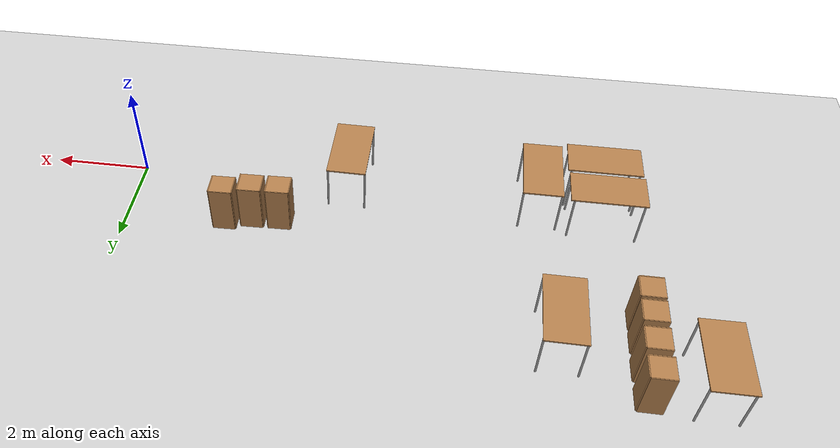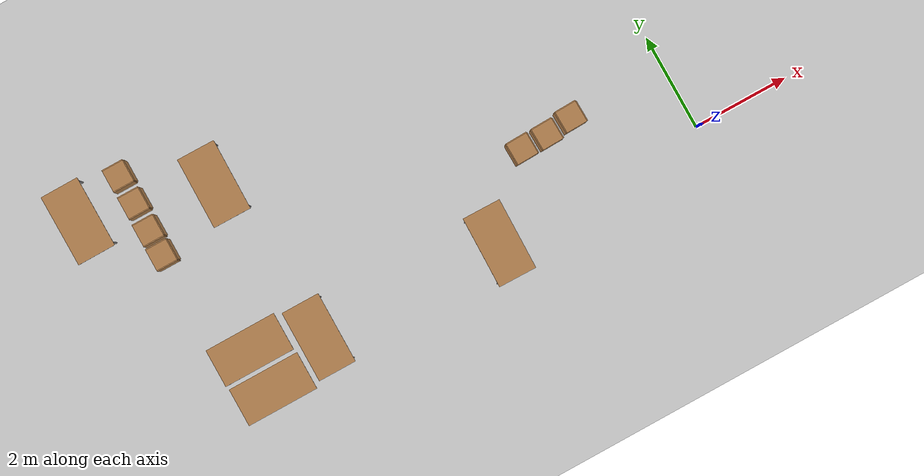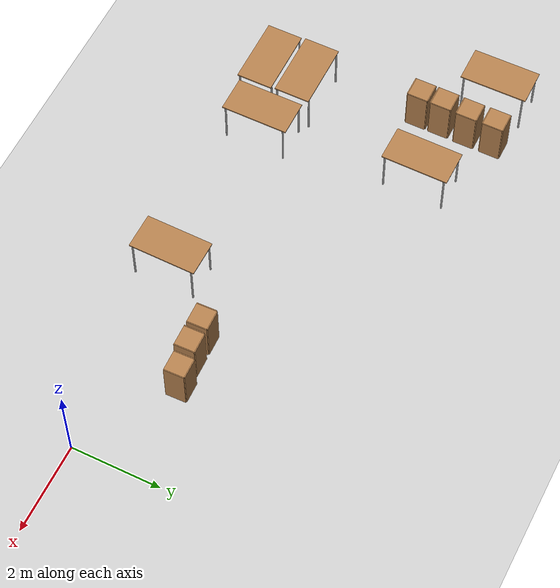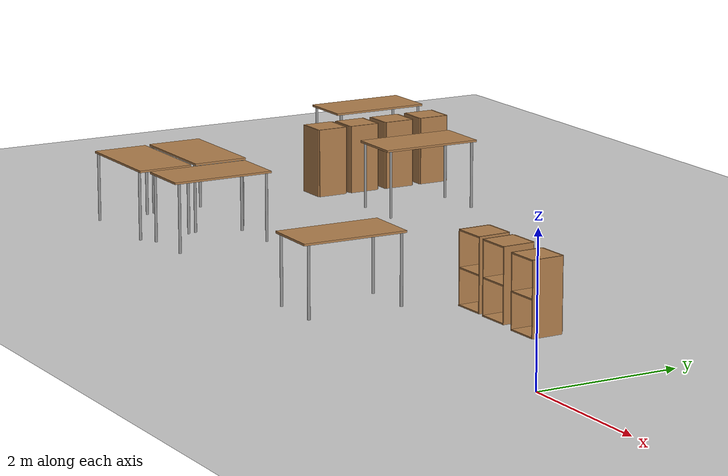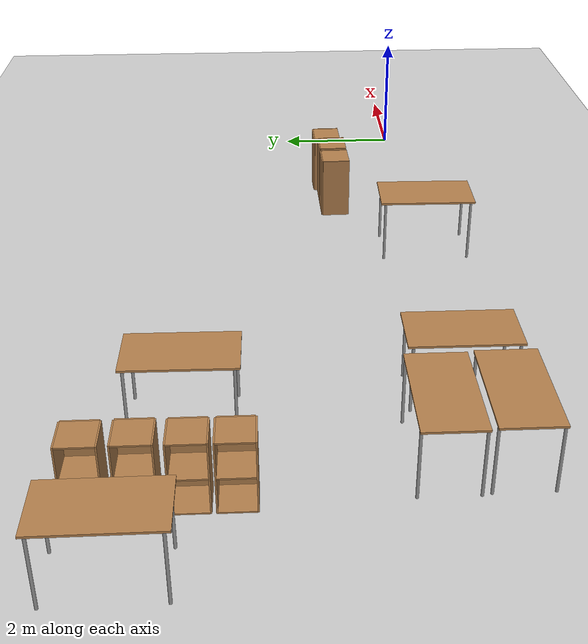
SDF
<sdf version="1.6">
 <world name="default">
  <model name="ground_plane">
   <static>1</static>
   <link name="link">
    <collision name="collision">
     <geometry><plane><normal>0 0 1</normal><size>100 100</size></plane></geometry>
     <surface>
      <contact><collide_bitmask>65535</collide_bitmask></contact>
      <friction><ode><mu>100</mu><mu2>50</mu2></ode></friction>
     </surface>
    </collision>
    <visual name="visual">
     <cast_shadows>0</cast_shadows>
     <geometry><plane><normal>0 0 1</normal><size>100 100</size></plane></geometry>
     <material>
      <script><uri>file://media/materials/scripts/gazebo.material</uri><name>Gazebo/Grey</name></script>
     </material>
    </visual>
   </link>
  </model>
  <model name="table">
   <static>1</static>
   <link name="link">
    <collision name="surface">
     <pose>0 0 1 0 -0 0</pose>
     <geometry><box><size>1.5 0.8 0.03</size></box></geometry>
     <surface><friction><ode><mu>0.6</mu><mu2>0.6</mu2></ode></friction></surface>
    </collision>
    <visual name="visual1">
     <pose>0 0 1 0 -0 0</pose>
     <geometry><box><size>1.5 0.8 0.03</size></box></geometry>
     <material>
      <script><uri>file://media/materials/scripts/gazebo.material</uri><name>Gazebo/Wood</name></script>
     </material>
    </visual>
    <collision name="front_left_leg">
     <pose>0.68 0.38 0.5 0 -0 0</pose>
     <geometry><cylinder><radius>0.02</radius><length>1</length></cylinder></geometry>
    </collision>
    <visual name="front_left_leg">
     <pose>0.68 0.38 0.5 0 -0 0</pose>
     <geometry><cylinder><radius>0.02</radius><length>1</length></cylinder></geometry>
     <material>
      <script><uri>file://media/materials/scripts/gazebo.material</uri><name>Gazebo/Grey</name></script>
     </material>
    </visual>
    <collision name="front_right_leg">
     <pose>0.68 -0.38 0.5 0 -0 0</pose>
     <geometry><cylinder><radius>0.02</radius><length>1</length></cylinder></geometry>
    </collision>
    <visual name="front_right_leg">
     <pose>0.68 -0.38 0.5 0 -0 0</pose>
     <geometry><cylinder><radius>0.02</radius><length>1</length></cylinder></geometry>
     <material>
      <script><uri>file://media/materials/scripts/gazebo.material</uri><name>Gazebo/Grey</name></script>
     </material>
    </visual>
    <collision name="back_right_leg">
     <pose>-0.68 -0.38 0.5 0 -0 0</pose>
     <geometry><cylinder><radius>0.02</radius><length>1</length></cylinder></geometry>
    </collision>
    <visual name="back_right_leg">
     <pose>-0.68 -0.38 0.5 0 -0 0</pose>
     <geometry><cylinder><radius>0.02</radius><length>1</length></cylinder></geometry>
     <material>
      <script><uri>file://media/materials/scripts/gazebo.material</uri><name>Gazebo/Grey</name></script>
     </material>
    </visual>
    <collision name="back_left_leg">
     <pose>-0.68 0.38 0.5 0 -0 0</pose>
     <geometry><cylinder><radius>0.02</radius><length>1</length></cylinder></geometry>
    </collision>
    <visual name="back_left_leg">
     <pose>-0.68 0.38 0.5 0 -0 0</pose>
     <geometry><cylinder><radius>0.02</radius><length>1</length></cylinder></geometry>
     <material>
      <script><uri>file://media/materials/scripts/gazebo.material</uri><name>Gazebo/Grey</name></script>
     </material>
    </visual>
   </link>
   <pose>-11.4413 4.20939 0 0 0 -1.56565</pose>
  </model>
  <model name="cabinet">
   <static>1</static>
   <link name="cabinet_bottom_plate">
    <inertial>
     <pose>0 0 -1 0 -0 0</pose>
     <inertia><ixx>2.05</ixx><ixy>0</ixy><ixz>0</ixz><iyy>2.05</iyy><iyz>0</iyz><izz>2.05</izz></inertia>
     <mass>25</mass>
    </inertial>
    <collision name="cabinet_bottom_plate_geom">
     <pose>0 0 0.01 0 -0 0</pose>
     <geometry><box><size>0.45 0.45 0.02</size></box></geometry>
    </collision>
    <visual name="cabinet_bottom_plate_geom_visual">
     <pose>0 0 0.01 0 -0 0</pose>
     <geometry><box><size>0.45 0.45 0.02</size></box></geometry>
     <material>
      <script><uri>file://media/materials/scripts/gazebo.material</uri><name>Gazebo/Wood</name></script>
     </material>
    </visual>
    <collision name="cabinet_bottom_plate_geom_cabinet_back_plate">
     <pose>0.235 0 0.51 0 -0 0</pose>
     <geometry><box><size>0.02 0.45 1.02</size></box></geometry>
    </collision>
    <visual name="cabinet_bottom_plate_geom_cabinet_back_plate_visual">
     <pose>0.235 0 0.51 0 -0 0</pose>
     <geometry><box><size>0.02 0.45 1.02</size></box></geometry>
     <material>
      <script><uri>file://media/materials/scripts/gazebo.material</uri><name>Gazebo/Wood</name></script>
     </material>
    </visual>
    <collision name="cabinet_bottom_plate_geom_cabinet_left_plate">
     <pose>0 0.235 0.51 0 -0 0</pose>
     <geometry><box><size>0.45 0.02 1.02</size></box></geometry>
    </collision>
    <visual name="cabinet_bottom_plate_geom_cabinet_left_plate_visual">
     <pose>0 0.235 0.51 0 -0 0</pose>
     <geometry><box><size>0.45 0.02 1.02</size></box></geometry>
     <material>
      <script><uri>file://media/materials/scripts/gazebo.material</uri><name>Gazebo/Wood</name></script>
     </material>
    </visual>
    <collision name="cabinet_bottom_plate_geom_cabinet_middle_plate">
     <pose>0 0 0.51 0 -0 0</pose>
     <geometry><box><size>0.45 0.45 0.02</size></box></geometry>
    </collision>
    <visual name="cabinet_bottom_plate_geom_cabinet_middle_plate_visual">
     <pose>0 0 0.51 0 -0 0</pose>
     <geometry><box><size>0.45 0.45 0.02</size></box></geometry>
     <material>
      <script><uri>file://media/materials/scripts/gazebo.material</uri><name>Gazebo/Wood</name></script>
     </material>
    </visual>
    <collision name="cabinet_bottom_plate_geom_cabinet_right_plate">
     <pose>0 -0.235 0.51 0 -0 0</pose>
     <geometry><box><size>0.45 0.02 1.02</size></box></geometry>
    </collision>
    <visual name="cabinet_bottom_plate_geom_cabinet_right_plate_visual">
     <pose>0 -0.235 0.51 0 -0 0</pose>
     <geometry><box><size>0.45 0.02 1.02</size></box></geometry>
     <material>
      <script><uri>file://media/materials/scripts/gazebo.material</uri><name>Gazebo/Wood</name></script>
     </material>
    </visual>
    <collision name="cabinet_bottom_plate_geom_cabinet_top_plate">
     <pose>0 0 1.01 0 -0 0</pose>
     <geometry><box><size>0.45 0.45 0.02</size></box></geometry>
    </collision>
    <visual name="cabinet_bottom_plate_geom_cabinet_top_plate_visual">
     <pose>0 0 1.01 0 -0 0</pose>
     <geometry><box><size>0.45 0.45 0.02</size></box></geometry>
     <material>
      <script><uri>file://media/materials/scripts/gazebo.material</uri><name>Gazebo/Wood</name></script>
     </material>
    </visual>
   </link>
   <pose>-10.3428 2.85716 0 0 -0 0</pose>
  </model>
  <model name="cabinet_0">
   <static>1</static>
   <link name="cabinet_bottom_plate">
    <inertial>
     <pose>0 0 -1 0 -0 0</pose>
     <inertia><ixx>2.05</ixx><ixy>0</ixy><ixz>0</ixz><iyy>2.05</iyy><iyz>0</iyz><izz>2.05</izz></inertia>
     <mass>25</mass>
    </inertial>
    <collision name="cabinet_bottom_plate_geom">
     <pose>0 0 0.01 0 -0 0</pose>
     <geometry><box><size>0.45 0.45 0.02</size></box></geometry>
    </collision>
    <visual name="cabinet_bottom_plate_geom_visual">
     <pose>0 0 0.01 0 -0 0</pose>
     <geometry><box><size>0.45 0.45 0.02</size></box></geometry>
     <material>
      <script><uri>file://media/materials/scripts/gazebo.material</uri><name>Gazebo/Wood</name></script>
     </material>
    </visual>
    <collision name="cabinet_bottom_plate_geom_cabinet_back_plate">
     <pose>0.235 0 0.51 0 -0 0</pose>
     <geometry><box><size>0.02 0.45 1.02</size></box></geometry>
    </collision>
    <visual name="cabinet_bottom_plate_geom_cabinet_back_plate_visual">
     <pose>0.235 0 0.51 0 -0 0</pose>
     <geometry><box><size>0.02 0.45 1.02</size></box></geometry>
     <material>
      <script><uri>file://media/materials/scripts/gazebo.material</uri><name>Gazebo/Wood</name></script>
     </material>
    </visual>
    <collision name="cabinet_bottom_plate_geom_cabinet_left_plate">
     <pose>0 0.235 0.51 0 -0 0</pose>
     <geometry><box><size>0.45 0.02 1.02</size></box></geometry>
    </collision>
    <visual name="cabinet_bottom_plate_geom_cabinet_left_plate_visual">
     <pose>0 0.235 0.51 0 -0 0</pose>
     <geometry><box><size>0.45 0.02 1.02</size></box></geometry>
     <material>
      <script><uri>file://media/materials/scripts/gazebo.material</uri><name>Gazebo/Wood</name></script>
     </material>
    </visual>
    <collision name="cabinet_bottom_plate_geom_cabinet_middle_plate">
     <pose>0 0 0.51 0 -0 0</pose>
     <geometry><box><size>0.45 0.45 0.02</size></box></geometry>
    </collision>
    <visual name="cabinet_bottom_plate_geom_cabinet_middle_plate_visual">
     <pose>0 0 0.51 0 -0 0</pose>
     <geometry><box><size>0.45 0.45 0.02</size></box></geometry>
     <material>
      <script><uri>file://media/materials/scripts/gazebo.material</uri><name>Gazebo/Wood</name></script>
     </material>
    </visual>
    <collision name="cabinet_bottom_plate_geom_cabinet_right_plate">
     <pose>0 -0.235 0.51 0 -0 0</pose>
     <geometry><box><size>0.45 0.02 1.02</size></box></geometry>
    </collision>
    <visual name="cabinet_bottom_plate_geom_cabinet_right_plate_visual">
     <pose>0 -0.235 0.51 0 -0 0</pose>
     <geometry><box><size>0.45 0.02 1.02</size></box></geometry>
     <material>
      <script><uri>file://media/materials/scripts/gazebo.material</uri><name>Gazebo/Wood</name></script>
     </material>
    </visual>
    <collision name="cabinet_bottom_plate_geom_cabinet_top_plate">
     <pose>0 0 1.01 0 -0 0</pose>
     <geometry><box><size>0.45 0.45 0.02</size></box></geometry>
    </collision>
    <visual name="cabinet_bottom_plate_geom_cabinet_top_plate_visual">
     <pose>0 0 1.01 0 -0 0</pose>
     <geometry><box><size>0.45 0.45 0.02</size></box></geometry>
     <material>
      <script><uri>file://media/materials/scripts/gazebo.material</uri><name>Gazebo/Wood</name></script>
     </material>
    </visual>
   </link>
   <pose>-10.3414 3.39549 0 0 -0 0</pose>
  </model>
  <model name="cabinet_clone">
   <static>1</static>
   <link name="cabinet_bottom_plate">
    <inertial>
     <pose>0 0 -1 0 -0 0</pose>
     <inertia><ixx>2.05</ixx><ixy>0</ixy><ixz>0</ixz><iyy>2.05</iyy><iyz>0</iyz><izz>2.05</izz></inertia>
     <mass>25</mass>
    </inertial>
    <collision name="cabinet_bottom_plate_geom">
     <pose>0 0 0.01 0 -0 0</pose>
     <geometry><box><size>0.45 0.45 0.02</size></box></geometry>
    </collision>
    <visual name="cabinet_bottom_plate_geom_visual">
     <pose>0 0 0.01 0 -0 0</pose>
     <geometry><box><size>0.45 0.45 0.02</size></box></geometry>
     <material>
      <script><uri>file://media/materials/scripts/gazebo.material</uri><name>Gazebo/Wood</name></script>
     </material>
    </visual>
    <collision name="cabinet_bottom_plate_geom_cabinet_back_plate">
     <pose>0.235 0 0.51 0 -0 0</pose>
     <geometry><box><size>0.02 0.45 1.02</size></box></geometry>
    </collision>
    <visual name="cabinet_bottom_plate_geom_cabinet_back_plate_visual">
     <pose>0.235 0 0.51 0 -0 0</pose>
     <geometry><box><size>0.02 0.45 1.02</size></box></geometry>
     <material>
      <script><uri>file://media/materials/scripts/gazebo.material</uri><name>Gazebo/Wood</name></script>
     </material>
    </visual>
    <collision name="cabinet_bottom_plate_geom_cabinet_left_plate">
     <pose>0 0.235 0.51 0 -0 0</pose>
     <geometry><box><size>0.45 0.02 1.02</size></box></geometry>
    </collision>
    <visual name="cabinet_bottom_plate_geom_cabinet_left_plate_visual">
     <pose>0 0.235 0.51 0 -0 0</pose>
     <geometry><box><size>0.45 0.02 1.02</size></box></geometry>
     <material>
      <script><uri>file://media/materials/scripts/gazebo.material</uri><name>Gazebo/Wood</name></script>
     </material>
    </visual>
    <collision name="cabinet_bottom_plate_geom_cabinet_middle_plate">
     <pose>0 0 0.51 0 -0 0</pose>
     <geometry><box><size>0.45 0.45 0.02</size></box></geometry>
    </collision>
    <visual name="cabinet_bottom_plate_geom_cabinet_middle_plate_visual">
     <pose>0 0 0.51 0 -0 0</pose>
     <geometry><box><size>0.45 0.45 0.02</size></box></geometry>
     <material>
      <script><uri>file://media/materials/scripts/gazebo.material</uri><name>Gazebo/Wood</name></script>
     </material>
    </visual>
    <collision name="cabinet_bottom_plate_geom_cabinet_right_plate">
     <pose>0 -0.235 0.51 0 -0 0</pose>
     <geometry><box><size>0.45 0.02 1.02</size></box></geometry>
    </collision>
    <visual name="cabinet_bottom_plate_geom_cabinet_right_plate_visual">
     <pose>0 -0.235 0.51 0 -0 0</pose>
     <geometry><box><size>0.45 0.02 1.02</size></box></geometry>
     <material>
      <script><uri>file://media/materials/scripts/gazebo.material</uri><name>Gazebo/Wood</name></script>
     </material>
    </visual>
    <collision name="cabinet_bottom_plate_geom_cabinet_top_plate">
     <pose>0 0 1.01 0 -0 0</pose>
     <geometry><box><size>0.45 0.45 0.02</size></box></geometry>
    </collision>
    <visual name="cabinet_bottom_plate_geom_cabinet_top_plate_visual">
     <pose>0 0 1.01 0 -0 0</pose>
     <geometry><box><size>0.45 0.45 0.02</size></box></geometry>
     <material>
      <script><uri>file://media/materials/scripts/gazebo.material</uri><name>Gazebo/Wood</name></script>
     </material>
    </visual>
   </link>
   <pose>-10.3328 3.99527 0 0 -0 0</pose>
  </model>
  <model name="cabinet_clone_0">
   <static>1</static>
   <link name="cabinet_bottom_plate">
    <inertial>
     <pose>0 0 -1 0 -0 0</pose>
     <inertia><ixx>2.05</ixx><ixy>0</ixy><ixz>0</ixz><iyy>2.05</iyy><iyz>0</iyz><izz>2.05</izz></inertia>
     <mass>25</mass>
    </inertial>
    <collision name="cabinet_bottom_plate_geom">
     <pose>0 0 0.01 0 -0 0</pose>
     <geometry><box><size>0.45 0.45 0.02</size></box></geometry>
    </collision>
    <visual name="cabinet_bottom_plate_geom_visual">
     <pose>0 0 0.01 0 -0 0</pose>
     <geometry><box><size>0.45 0.45 0.02</size></box></geometry>
     <material>
      <script><uri>file://media/materials/scripts/gazebo.material</uri><name>Gazebo/Wood</name></script>
     </material>
    </visual>
    <collision name="cabinet_bottom_plate_geom_cabinet_back_plate">
     <pose>0.235 0 0.51 0 -0 0</pose>
     <geometry><box><size>0.02 0.45 1.02</size></box></geometry>
    </collision>
    <visual name="cabinet_bottom_plate_geom_cabinet_back_plate_visual">
     <pose>0.235 0 0.51 0 -0 0</pose>
     <geometry><box><size>0.02 0.45 1.02</size></box></geometry>
     <material>
      <script><uri>file://media/materials/scripts/gazebo.material</uri><name>Gazebo/Wood</name></script>
     </material>
    </visual>
    <collision name="cabinet_bottom_plate_geom_cabinet_left_plate">
     <pose>0 0.235 0.51 0 -0 0</pose>
     <geometry><box><size>0.45 0.02 1.02</size></box></geometry>
    </collision>
    <visual name="cabinet_bottom_plate_geom_cabinet_left_plate_visual">
     <pose>0 0.235 0.51 0 -0 0</pose>
     <geometry><box><size>0.45 0.02 1.02</size></box></geometry>
     <material>
      <script><uri>file://media/materials/scripts/gazebo.material</uri><name>Gazebo/Wood</name></script>
     </material>
    </visual>
    <collision name="cabinet_bottom_plate_geom_cabinet_middle_plate">
     <pose>0 0 0.51 0 -0 0</pose>
     <geometry><box><size>0.45 0.45 0.02</size></box></geometry>
    </collision>
    <visual name="cabinet_bottom_plate_geom_cabinet_middle_plate_visual">
     <pose>0 0 0.51 0 -0 0</pose>
     <geometry><box><size>0.45 0.45 0.02</size></box></geometry>
     <material>
      <script><uri>file://media/materials/scripts/gazebo.material</uri><name>Gazebo/Wood</name></script>
     </material>
    </visual>
    <collision name="cabinet_bottom_plate_geom_cabinet_right_plate">
     <pose>0 -0.235 0.51 0 -0 0</pose>
     <geometry><box><size>0.45 0.02 1.02</size></box></geometry>
    </collision>
    <visual name="cabinet_bottom_plate_geom_cabinet_right_plate_visual">
     <pose>0 -0.235 0.51 0 -0 0</pose>
     <geometry><box><size>0.45 0.02 1.02</size></box></geometry>
     <material>
      <script><uri>file://media/materials/scripts/gazebo.material</uri><name>Gazebo/Wood</name></script>
     </material>
    </visual>
    <collision name="cabinet_bottom_plate_geom_cabinet_top_plate">
     <pose>0 0 1.01 0 -0 0</pose>
     <geometry><box><size>0.45 0.45 0.02</size></box></geometry>
    </collision>
    <visual name="cabinet_bottom_plate_geom_cabinet_top_plate_visual">
     <pose>0 0 1.01 0 -0 0</pose>
     <geometry><box><size>0.45 0.45 0.02</size></box></geometry>
     <material>
      <script><uri>file://media/materials/scripts/gazebo.material</uri><name>Gazebo/Wood</name></script>
     </material>
    </visual>
   </link>
   <pose>-10.3382 4.60193 0 0 -0 0</pose>
  </model>
  <model name="table_0">
   <static>1</static>
   <link name="link">
    <collision name="surface">
     <pose>0 0 1 0 -0 0</pose>
     <geometry><box><size>1.5 0.8 0.03</size></box></geometry>
     <surface><friction><ode><mu>0.6</mu><mu2>0.6</mu2></ode></friction></surface>
    </collision>
    <visual name="visual1">
     <pose>0 0 1 0 -0 0</pose>
     <geometry><box><size>1.5 0.8 0.03</size></box></geometry>
     <material>
      <script><uri>file://media/materials/scripts/gazebo.material</uri><name>Gazebo/Wood</name></script>
     </material>
    </visual>
    <collision name="front_left_leg">
     <pose>0.68 0.38 0.5 0 -0 0</pose>
     <geometry><cylinder><radius>0.02</radius><length>1</length></cylinder></geometry>
    </collision>
    <visual name="front_left_leg">
     <pose>0.68 0.38 0.5 0 -0 0</pose>
     <geometry><cylinder><radius>0.02</radius><length>1</length></cylinder></geometry>
     <material>
      <script><uri>file://media/materials/scripts/gazebo.material</uri><name>Gazebo/Grey</name></script>
     </material>
    </visual>
    <collision name="front_right_leg">
     <pose>0.68 -0.38 0.5 0 -0 0</pose>
     <geometry><cylinder><radius>0.02</radius><length>1</length></cylinder></geometry>
    </collision>
    <visual name="front_right_leg">
     <pose>0.68 -0.38 0.5 0 -0 0</pose>
     <geometry><cylinder><radius>0.02</radius><length>1</length></cylinder></geometry>
     <material>
      <script><uri>file://media/materials/scripts/gazebo.material</uri><name>Gazebo/Grey</name></script>
     </material>
    </visual>
    <collision name="back_right_leg">
     <pose>-0.68 -0.38 0.5 0 -0 0</pose>
     <geometry><cylinder><radius>0.02</radius><length>1</length></cylinder></geometry>
    </collision>
    <visual name="back_right_leg">
     <pose>-0.68 -0.38 0.5 0 -0 0</pose>
     <geometry><cylinder><radius>0.02</radius><length>1</length></cylinder></geometry>
     <material>
      <script><uri>file://media/materials/scripts/gazebo.material</uri><name>Gazebo/Grey</name></script>
     </material>
    </visual>
    <collision name="back_left_leg">
     <pose>-0.68 0.38 0.5 0 -0 0</pose>
     <geometry><cylinder><radius>0.02</radius><length>1</length></cylinder></geometry>
    </collision>
    <visual name="back_left_leg">
     <pose>-0.68 0.38 0.5 0 -0 0</pose>
     <geometry><cylinder><radius>0.02</radius><length>1</length></cylinder></geometry>
     <material>
      <script><uri>file://media/materials/scripts/gazebo.material</uri><name>Gazebo/Grey</name></script>
     </material>
    </visual>
   </link>
   <pose>-8.78835 3.56308 0 0 -0 1.56265</pose>
  </model>
  <model name="table_1">
   <static>1</static>
   <link name="link">
    <collision name="surface">
     <pose>0 0 1 0 -0 0</pose>
     <geometry><box><size>1.5 0.8 0.03</size></box></geometry>
     <surface><friction><ode><mu>0.6</mu><mu2>0.6</mu2></ode></friction></surface>
    </collision>
    <visual name="visual1">
     <pose>0 0 1 0 -0 0</pose>
     <geometry><box><size>1.5 0.8 0.03</size></box></geometry>
     <material>
      <script><uri>file://media/materials/scripts/gazebo.material</uri><name>Gazebo/Wood</name></script>
     </material>
    </visual>
    <collision name="front_left_leg">
     <pose>0.68 0.38 0.5 0 -0 0</pose>
     <geometry><cylinder><radius>0.02</radius><length>1</length></cylinder></geometry>
    </collision>
    <visual name="front_left_leg">
     <pose>0.68 0.38 0.5 0 -0 0</pose>
     <geometry><cylinder><radius>0.02</radius><length>1</length></cylinder></geometry>
     <material>
      <script><uri>file://media/materials/scripts/gazebo.material</uri><name>Gazebo/Grey</name></script>
     </material>
    </visual>
    <collision name="front_right_leg">
     <pose>0.68 -0.38 0.5 0 -0 0</pose>
     <geometry><cylinder><radius>0.02</radius><length>1</length></cylinder></geometry>
    </collision>
    <visual name="front_right_leg">
     <pose>0.68 -0.38 0.5 0 -0 0</pose>
     <geometry><cylinder><radius>0.02</radius><length>1</length></cylinder></geometry>
     <material>
      <script><uri>file://media/materials/scripts/gazebo.material</uri><name>Gazebo/Grey</name></script>
     </material>
    </visual>
    <collision name="back_right_leg">
     <pose>-0.68 -0.38 0.5 0 -0 0</pose>
     <geometry><cylinder><radius>0.02</radius><length>1</length></cylinder></geometry>
    </collision>
    <visual name="back_right_leg">
     <pose>-0.68 -0.38 0.5 0 -0 0</pose>
     <geometry><cylinder><radius>0.02</radius><length>1</length></cylinder></geometry>
     <material>
      <script><uri>file://media/materials/scripts/gazebo.material</uri><name>Gazebo/Grey</name></script>
     </material>
    </visual>
    <collision name="back_left_leg">
     <pose>-0.68 0.38 0.5 0 -0 0</pose>
     <geometry><cylinder><radius>0.02</radius><length>1</length></cylinder></geometry>
    </collision>
    <visual name="back_left_leg">
     <pose>-0.68 0.38 0.5 0 -0 0</pose>
     <geometry><cylinder><radius>0.02</radius><length>1</length></cylinder></geometry>
     <material>
      <script><uri>file://media/materials/scripts/gazebo.material</uri><name>Gazebo/Grey</name></script>
     </material>
    </visual>
   </link>
   <pose>-4.50688 -0.122222 0 0 -0 1.55727</pose>
  </model>
  <model name="table_3">
   <static>1</static>
   <link name="link">
    <collision name="surface">
     <pose>0 0 1 0 -0 0</pose>
     <geometry><box><size>1.5 0.8 0.03</size></box></geometry>
     <surface><friction><ode><mu>0.6</mu><mu2>0.6</mu2></ode></friction></surface>
    </collision>
    <visual name="visual1">
     <pose>0 0 1 0 -0 0</pose>
     <geometry><box><size>1.5 0.8 0.03</size></box></geometry>
     <material>
      <script><uri>file://media/materials/scripts/gazebo.material</uri><name>Gazebo/Wood</name></script>
     </material>
    </visual>
    <collision name="front_left_leg">
     <pose>0.68 0.38 0.5 0 -0 0</pose>
     <geometry><cylinder><radius>0.02</radius><length>1</length></cylinder></geometry>
    </collision>
    <visual name="front_left_leg">
     <pose>0.68 0.38 0.5 0 -0 0</pose>
     <geometry><cylinder><radius>0.02</radius><length>1</length></cylinder></geometry>
     <material>
      <script><uri>file://media/materials/scripts/gazebo.material</uri><name>Gazebo/Grey</name></script>
     </material>
    </visual>
    <collision name="front_right_leg">
     <pose>0.68 -0.38 0.5 0 -0 0</pose>
     <geometry><cylinder><radius>0.02</radius><length>1</length></cylinder></geometry>
    </collision>
    <visual name="front_right_leg">
     <pose>0.68 -0.38 0.5 0 -0 0</pose>
     <geometry><cylinder><radius>0.02</radius><length>1</length></cylinder></geometry>
     <material>
      <script><uri>file://media/materials/scripts/gazebo.material</uri><name>Gazebo/Grey</name></script>
     </material>
    </visual>
    <collision name="back_right_leg">
     <pose>-0.68 -0.38 0.5 0 -0 0</pose>
     <geometry><cylinder><radius>0.02</radius><length>1</length></cylinder></geometry>
    </collision>
    <visual name="back_right_leg">
     <pose>-0.68 -0.38 0.5 0 -0 0</pose>
     <geometry><cylinder><radius>0.02</radius><length>1</length></cylinder></geometry>
     <material>
      <script><uri>file://media/materials/scripts/gazebo.material</uri><name>Gazebo/Grey</name></script>
     </material>
    </visual>
    <collision name="back_left_leg">
     <pose>-0.68 0.38 0.5 0 -0 0</pose>
     <geometry><cylinder><radius>0.02</radius><length>1</length></cylinder></geometry>
    </collision>
    <visual name="back_left_leg">
     <pose>-0.68 0.38 0.5 0 -0 0</pose>
     <geometry><cylinder><radius>0.02</radius><length>1</length></cylinder></geometry>
     <material>
      <script><uri>file://media/materials/scripts/gazebo.material</uri><name>Gazebo/Grey</name></script>
     </material>
    </visual>
   </link>
   <pose>-9.73659 0.414798 0 0 -0 0</pose>
  </model>
  <model name="table_4">
   <static>1</static>
   <link name="link">
    <collision name="surface">
     <pose>0 0 1 0 -0 0</pose>
     <geometry><box><size>1.5 0.8 0.03</size></box></geometry>
     <surface><friction><ode><mu>0.6</mu><mu2>0.6</mu2></ode></friction></surface>
    </collision>
    <visual name="visual1">
     <pose>0 0 1 0 -0 0</pose>
     <geometry><box><size>1.5 0.8 0.03</size></box></geometry>
     <material>
      <script><uri>file://media/materials/scripts/gazebo.material</uri><name>Gazebo/Wood</name></script>
     </material>
    </visual>
    <collision name="front_left_leg">
     <pose>0.68 0.38 0.5 0 -0 0</pose>
     <geometry><cylinder><radius>0.02</radius><length>1</length></cylinder></geometry>
    </collision>
    <visual name="front_left_leg">
     <pose>0.68 0.38 0.5 0 -0 0</pose>
     <geometry><cylinder><radius>0.02</radius><length>1</length></cylinder></geometry>
     <material>
      <script><uri>file://media/materials/scripts/gazebo.material</uri><name>Gazebo/Grey</name></script>
     </material>
    </visual>
    <collision name="front_right_leg">
     <pose>0.68 -0.38 0.5 0 -0 0</pose>
     <geometry><cylinder><radius>0.02</radius><length>1</length></cylinder></geometry>
    </collision>
    <visual name="front_right_leg">
     <pose>0.68 -0.38 0.5 0 -0 0</pose>
     <geometry><cylinder><radius>0.02</radius><length>1</length></cylinder></geometry>
     <material>
      <script><uri>file://media/materials/scripts/gazebo.material</uri><name>Gazebo/Grey</name></script>
     </material>
    </visual>
    <collision name="back_right_leg">
     <pose>-0.68 -0.38 0.5 0 -0 0</pose>
     <geometry><cylinder><radius>0.02</radius><length>1</length></cylinder></geometry>
    </collision>
    <visual name="back_right_leg">
     <pose>-0.68 -0.38 0.5 0 -0 0</pose>
     <geometry><cylinder><radius>0.02</radius><length>1</length></cylinder></geometry>
     <material>
      <script><uri>file://media/materials/scripts/gazebo.material</uri><name>Gazebo/Grey</name></script>
     </material>
    </visual>
    <collision name="back_left_leg">
     <pose>-0.68 0.38 0.5 0 -0 0</pose>
     <geometry><cylinder><radius>0.02</radius><length>1</length></cylinder></geometry>
    </collision>
    <visual name="back_left_leg">
     <pose>-0.68 0.38 0.5 0 -0 0</pose>
     <geometry><cylinder><radius>0.02</radius><length>1</length></cylinder></geometry>
     <material>
      <script><uri>file://media/materials/scripts/gazebo.material</uri><name>Gazebo/Grey</name></script>
     </material>
    </visual>
   </link>
   <pose>-9.70839 -0.466215 0 0 -0 0</pose>
  </model>
  <model name="table_5">
   <static>1</static>
   <link name="link">
    <collision name="surface">
     <pose>0 0 1 0 -0 0</pose>
     <geometry><box><size>1.5 0.8 0.03</size></box></geometry>
     <surface><friction><ode><mu>0.6</mu><mu2>0.6</mu2></ode></friction></surface>
    </collision>
    <visual name="visual1">
     <pose>0 0 1 0 -0 0</pose>
     <geometry><box><size>1.5 0.8 0.03</size></box></geometry>
     <material>
      <script><uri>file://media/materials/scripts/gazebo.material</uri><name>Gazebo/Wood</name></script>
     </material>
    </visual>
    <collision name="front_left_leg">
     <pose>0.68 0.38 0.5 0 -0 0</pose>
     <geometry><cylinder><radius>0.02</radius><length>1</length></cylinder></geometry>
    </collision>
    <visual name="front_left_leg">
     <pose>0.68 0.38 0.5 0 -0 0</pose>
     <geometry><cylinder><radius>0.02</radius><length>1</length></cylinder></geometry>
     <material>
      <script><uri>file://media/materials/scripts/gazebo.material</uri><name>Gazebo/Grey</name></script>
     </material>
    </visual>
    <collision name="front_right_leg">
     <pose>0.68 -0.38 0.5 0 -0 0</pose>
     <geometry><cylinder><radius>0.02</radius><length>1</length></cylinder></geometry>
    </collision>
    <visual name="front_right_leg">
     <pose>0.68 -0.38 0.5 0 -0 0</pose>
     <geometry><cylinder><radius>0.02</radius><length>1</length></cylinder></geometry>
     <material>
      <script><uri>file://media/materials/scripts/gazebo.material</uri><name>Gazebo/Grey</name></script>
     </material>
    </visual>
    <collision name="back_right_leg">
     <pose>-0.68 -0.38 0.5 0 -0 0</pose>
     <geometry><cylinder><radius>0.02</radius><length>1</length></cylinder></geometry>
    </collision>
    <visual name="back_right_leg">
     <pose>-0.68 -0.38 0.5 0 -0 0</pose>
     <geometry><cylinder><radius>0.02</radius><length>1</length></cylinder></geometry>
     <material>
      <script><uri>file://media/materials/scripts/gazebo.material</uri><name>Gazebo/Grey</name></script>
     </material>
    </visual>
    <collision name="back_left_leg">
     <pose>-0.68 0.38 0.5 0 -0 0</pose>
     <geometry><cylinder><radius>0.02</radius><length>1</length></cylinder></geometry>
    </collision>
    <visual name="back_left_leg">
     <pose>-0.68 0.38 0.5 0 -0 0</pose>
     <geometry><cylinder><radius>0.02</radius><length>1</length></cylinder></geometry>
     <material>
      <script><uri>file://media/materials/scripts/gazebo.material</uri><name>Gazebo/Grey</name></script>
     </material>
    </visual>
   </link>
   <pose>-8.45015 -0.01693 0 0 0 -1.57161</pose>
  </model>
  <model name="cabinet_4">
   <static>1</static>
   <link name="cabinet_bottom_plate">
    <inertial>
     <pose>0 0 -1 0 -0 0</pose>
     <inertia><ixx>2.05</ixx><ixy>0</ixy><ixz>0</ixz><iyy>2.05</iyy><iyz>0</iyz><izz>2.05</izz></inertia>
     <mass>25</mass>
    </inertial>
    <collision name="cabinet_bottom_plate_geom">
     <pose>0 0 0.01 0 -0 0</pose>
     <geometry><box><size>0.45 0.45 0.02</size></box></geometry>
    </collision>
    <visual name="cabinet_bottom_plate_geom_visual">
     <pose>0 0 0.01 0 -0 0</pose>
     <geometry><box><size>0.45 0.45 0.02</size></box></geometry>
     <material>
      <script><uri>file://media/materials/scripts/gazebo.material</uri><name>Gazebo/Wood</name></script>
     </material>
    </visual>
    <collision name="cabinet_bottom_plate_geom_cabinet_back_plate">
     <pose>0.235 0 0.51 0 -0 0</pose>
     <geometry><box><size>0.02 0.45 1.02</size></box></geometry>
    </collision>
    <visual name="cabinet_bottom_plate_geom_cabinet_back_plate_visual">
     <pose>0.235 0 0.51 0 -0 0</pose>
     <geometry><box><size>0.02 0.45 1.02</size></box></geometry>
     <material>
      <script><uri>file://media/materials/scripts/gazebo.material</uri><name>Gazebo/Wood</name></script>
     </material>
    </visual>
    <collision name="cabinet_bottom_plate_geom_cabinet_left_plate">
     <pose>0 0.235 0.51 0 -0 0</pose>
     <geometry><box><size>0.45 0.02 1.02</size></box></geometry>
    </collision>
    <visual name="cabinet_bottom_plate_geom_cabinet_left_plate_visual">
     <pose>0 0.235 0.51 0 -0 0</pose>
     <geometry><box><size>0.45 0.02 1.02</size></box></geometry>
     <material>
      <script><uri>file://media/materials/scripts/gazebo.material</uri><name>Gazebo/Wood</name></script>
     </material>
    </visual>
    <collision name="cabinet_bottom_plate_geom_cabinet_middle_plate">
     <pose>0 0 0.51 0 -0 0</pose>
     <geometry><box><size>0.45 0.45 0.02</size></box></geometry>
    </collision>
    <visual name="cabinet_bottom_plate_geom_cabinet_middle_plate_visual">
     <pose>0 0 0.51 0 -0 0</pose>
     <geometry><box><size>0.45 0.45 0.02</size></box></geometry>
     <material>
      <script><uri>file://media/materials/scripts/gazebo.material</uri><name>Gazebo/Wood</name></script>
     </material>
    </visual>
    <collision name="cabinet_bottom_plate_geom_cabinet_right_plate">
     <pose>0 -0.235 0.51 0 -0 0</pose>
     <geometry><box><size>0.45 0.02 1.02</size></box></geometry>
    </collision>
    <visual name="cabinet_bottom_plate_geom_cabinet_right_plate_visual">
     <pose>0 -0.235 0.51 0 -0 0</pose>
     <geometry><box><size>0.45 0.02 1.02</size></box></geometry>
     <material>
      <script><uri>file://media/materials/scripts/gazebo.material</uri><name>Gazebo/Wood</name></script>
     </material>
    </visual>
    <collision name="cabinet_bottom_plate_geom_cabinet_top_plate">
     <pose>0 0 1.01 0 -0 0</pose>
     <geometry><box><size>0.45 0.45 0.02</size></box></geometry>
    </collision>
    <visual name="cabinet_bottom_plate_geom_cabinet_top_plate_visual">
     <pose>0 0 1.01 0 -0 0</pose>
     <geometry><box><size>0.45 0.45 0.02</size></box></geometry>
     <material>
      <script><uri>file://media/materials/scripts/gazebo.material</uri><name>Gazebo/Wood</name></script>
     </material>
    </visual>
   </link>
   <pose>-2.10496 1.34334 0.031572 0 -0 1.59732</pose>
  </model>
  <model name="cabinet_4_clone">
   <static>1</static>
   <link name="cabinet_bottom_plate">
    <inertial>
     <pose>0 0 -1 0 -0 0</pose>
     <inertia><ixx>2.05</ixx><ixy>0</ixy><ixz>0</ixz><iyy>2.05</iyy><iyz>0</iyz><izz>2.05</izz></inertia>
     <mass>25</mass>
    </inertial>
    <collision name="cabinet_bottom_plate_geom">
     <pose>0 0 0.01 0 -0 0</pose>
     <geometry><box><size>0.45 0.45 0.02</size></box></geometry>
    </collision>
    <visual name="cabinet_bottom_plate_geom_visual">
     <pose>0 0 0.01 0 -0 0</pose>
     <geometry><box><size>0.45 0.45 0.02</size></box></geometry>
     <material>
      <script><uri>file://media/materials/scripts/gazebo.material</uri><name>Gazebo/Wood</name></script>
     </material>
    </visual>
    <collision name="cabinet_bottom_plate_geom_cabinet_back_plate">
     <pose>0.235 0 0.51 0 -0 0</pose>
     <geometry><box><size>0.02 0.45 1.02</size></box></geometry>
    </collision>
    <visual name="cabinet_bottom_plate_geom_cabinet_back_plate_visual">
     <pose>0.235 0 0.51 0 -0 0</pose>
     <geometry><box><size>0.02 0.45 1.02</size></box></geometry>
     <material>
      <script><uri>file://media/materials/scripts/gazebo.material</uri><name>Gazebo/Wood</name></script>
     </material>
    </visual>
    <collision name="cabinet_bottom_plate_geom_cabinet_left_plate">
     <pose>0 0.235 0.51 0 -0 0</pose>
     <geometry><box><size>0.45 0.02 1.02</size></box></geometry>
    </collision>
    <visual name="cabinet_bottom_plate_geom_cabinet_left_plate_visual">
     <pose>0 0.235 0.51 0 -0 0</pose>
     <geometry><box><size>0.45 0.02 1.02</size></box></geometry>
     <material>
      <script><uri>file://media/materials/scripts/gazebo.material</uri><name>Gazebo/Wood</name></script>
     </material>
    </visual>
    <collision name="cabinet_bottom_plate_geom_cabinet_middle_plate">
     <pose>0 0 0.51 0 -0 0</pose>
     <geometry><box><size>0.45 0.45 0.02</size></box></geometry>
    </collision>
    <visual name="cabinet_bottom_plate_geom_cabinet_middle_plate_visual">
     <pose>0 0 0.51 0 -0 0</pose>
     <geometry><box><size>0.45 0.45 0.02</size></box></geometry>
     <material>
      <script><uri>file://media/materials/scripts/gazebo.material</uri><name>Gazebo/Wood</name></script>
     </material>
    </visual>
    <collision name="cabinet_bottom_plate_geom_cabinet_right_plate">
     <pose>0 -0.235 0.51 0 -0 0</pose>
     <geometry><box><size>0.45 0.02 1.02</size></box></geometry>
    </collision>
    <visual name="cabinet_bottom_plate_geom_cabinet_right_plate_visual">
     <pose>0 -0.235 0.51 0 -0 0</pose>
     <geometry><box><size>0.45 0.02 1.02</size></box></geometry>
     <material>
      <script><uri>file://media/materials/scripts/gazebo.material</uri><name>Gazebo/Wood</name></script>
     </material>
    </visual>
    <collision name="cabinet_bottom_plate_geom_cabinet_top_plate">
     <pose>0 0 1.01 0 -0 0</pose>
     <geometry><box><size>0.45 0.45 0.02</size></box></geometry>
    </collision>
    <visual name="cabinet_bottom_plate_geom_cabinet_top_plate_visual">
     <pose>0 0 1.01 0 -0 0</pose>
     <geometry><box><size>0.45 0.45 0.02</size></box></geometry>
     <material>
      <script><uri>file://media/materials/scripts/gazebo.material</uri><name>Gazebo/Wood</name></script>
     </material>
    </visual>
   </link>
   <pose>-2.67442 1.27413 0.088689 0 -0 1.59732</pose>
  </model>
  <model name="cabinet_4_clone_0">
   <static>1</static>
   <link name="cabinet_bottom_plate">
    <inertial>
     <pose>0 0 -1 0 -0 0</pose>
     <inertia><ixx>2.05</ixx><ixy>0</ixy><ixz>0</ixz><iyy>2.05</iyy><iyz>0</iyz><izz>2.05</izz></inertia>
     <mass>25</mass>
    </inertial>
    <collision name="cabinet_bottom_plate_geom">
     <pose>0 0 0.01 0 -0 0</pose>
     <geometry><box><size>0.45 0.45 0.02</size></box></geometry>
    </collision>
    <visual name="cabinet_bottom_plate_geom_visual">
     <pose>0 0 0.01 0 -0 0</pose>
     <geometry><box><size>0.45 0.45 0.02</size></box></geometry>
     <material>
      <script><uri>file://media/materials/scripts/gazebo.material</uri><name>Gazebo/Wood</name></script>
     </material>
    </visual>
    <collision name="cabinet_bottom_plate_geom_cabinet_back_plate">
     <pose>0.235 0 0.51 0 -0 0</pose>
     <geometry><box><size>0.02 0.45 1.02</size></box></geometry>
    </collision>
    <visual name="cabinet_bottom_plate_geom_cabinet_back_plate_visual">
     <pose>0.235 0 0.51 0 -0 0</pose>
     <geometry><box><size>0.02 0.45 1.02</size></box></geometry>
     <material>
      <script><uri>file://media/materials/scripts/gazebo.material</uri><name>Gazebo/Wood</name></script>
     </material>
    </visual>
    <collision name="cabinet_bottom_plate_geom_cabinet_left_plate">
     <pose>0 0.235 0.51 0 -0 0</pose>
     <geometry><box><size>0.45 0.02 1.02</size></box></geometry>
    </collision>
    <visual name="cabinet_bottom_plate_geom_cabinet_left_plate_visual">
     <pose>0 0.235 0.51 0 -0 0</pose>
     <geometry><box><size>0.45 0.02 1.02</size></box></geometry>
     <material>
      <script><uri>file://media/materials/scripts/gazebo.material</uri><name>Gazebo/Wood</name></script>
     </material>
    </visual>
    <collision name="cabinet_bottom_plate_geom_cabinet_middle_plate">
     <pose>0 0 0.51 0 -0 0</pose>
     <geometry><box><size>0.45 0.45 0.02</size></box></geometry>
    </collision>
    <visual name="cabinet_bottom_plate_geom_cabinet_middle_plate_visual">
     <pose>0 0 0.51 0 -0 0</pose>
     <geometry><box><size>0.45 0.45 0.02</size></box></geometry>
     <material>
      <script><uri>file://media/materials/scripts/gazebo.material</uri><name>Gazebo/Wood</name></script>
     </material>
    </visual>
    <collision name="cabinet_bottom_plate_geom_cabinet_right_plate">
     <pose>0 -0.235 0.51 0 -0 0</pose>
     <geometry><box><size>0.45 0.02 1.02</size></box></geometry>
    </collision>
    <visual name="cabinet_bottom_plate_geom_cabinet_right_plate_visual">
     <pose>0 -0.235 0.51 0 -0 0</pose>
     <geometry><box><size>0.45 0.02 1.02</size></box></geometry>
     <material>
      <script><uri>file://media/materials/scripts/gazebo.material</uri><name>Gazebo/Wood</name></script>
     </material>
    </visual>
    <collision name="cabinet_bottom_plate_geom_cabinet_top_plate">
     <pose>0 0 1.01 0 -0 0</pose>
     <geometry><box><size>0.45 0.45 0.02</size></box></geometry>
    </collision>
    <visual name="cabinet_bottom_plate_geom_cabinet_top_plate_visual">
     <pose>0 0 1.01 0 -0 0</pose>
     <geometry><box><size>0.45 0.45 0.02</size></box></geometry>
     <material>
      <script><uri>file://media/materials/scripts/gazebo.material</uri><name>Gazebo/Wood</name></script>
     </material>
    </visual>
   </link>
   <pose>-3.23759 1.26175 0.097319 0 -0 1.59732</pose>
  </model>
 </world>
</sdf>
